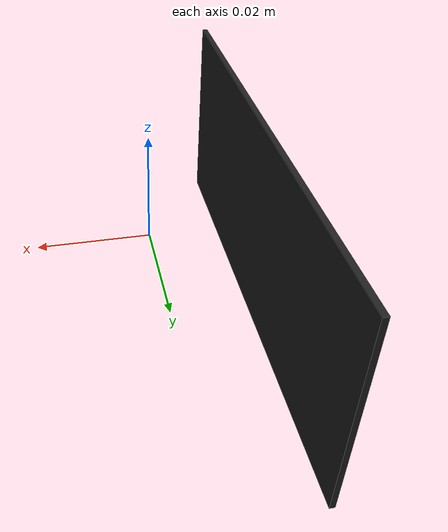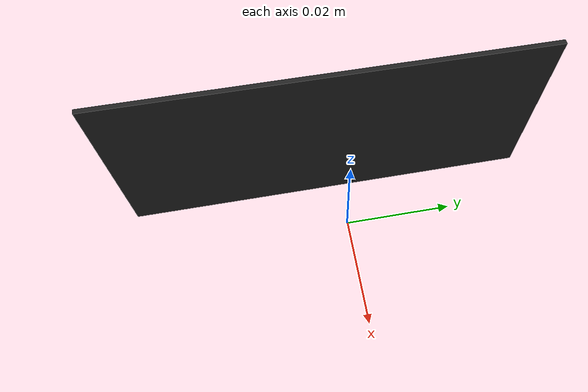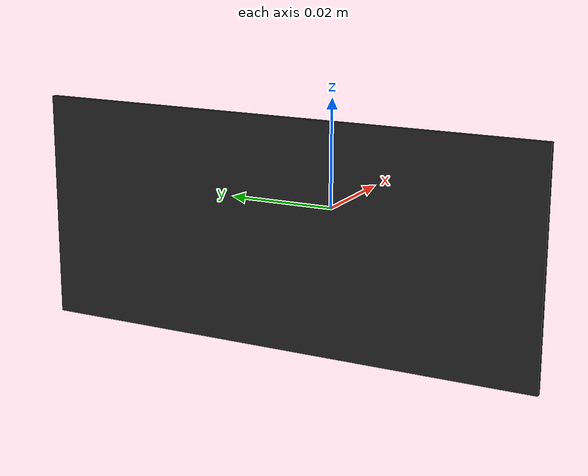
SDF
<sdf version='1.6'>
	<model name="stereo_camera_1">
		<link name="left_camera_link">
			<pose frame=''>0 0.02 0 0 0 0</pose>
			<inertial>
				<mass>0.05</mass>
				<inertia>
					<ixx>1e-05</ixx>
					<ixy>0</ixy>
					<ixz>0</ixz>
					<iyy>1e-05</iyy>
					<iyz>0</iyz>
					<izz>1e-05</izz>
				</inertia>
			</inertial>
			<sensor name='camera' type='wideanglecamera'>
				<always_on>1</always_on>
				<update_rate>10</update_rate>
				<camera name='front'>
					<horizontal_fov>3.05432619</horizontal_fov>
					<image>
						<width>320</width>
						<height>240</height>
						<format>R8G8B8</format>
					</image>
					<clip>
						<near>0.01</near>
						<far>100</far>
					</clip>
					<noise>
						<type>gaussian</type>
						<mean>0</mean>
						<stddev>0.007</stddev>
					</noise>
					<lens>
						<type>orthographic</type>
						<scale_to_hfov>true</scale_to_hfov>
						<cutoff_angle>1.5271631</cutoff_angle>
						<env_texture_size>512</env_texture_size>
					</lens>
				</camera>
				<plugin name='camera_controller' filename='libgazebo_ros_camera.so'>
					<alwaysOn>true</alwaysOn>
					<updateRate>10.0</updateRate>
					<cameraName>stereo_1/left</cameraName>
					<imageTopicName>image_raw</imageTopicName>
					<cameraInfoTopicName>camera_info</cameraInfoTopicName>
					<frameName>stereo_1</frameName>
					<hackBaseline>0.0</hackBaseline>
					<distortionK1>0.0</distortionK1>
					<distortionK2>0.0</distortionK2>
					<distortionK3>0.0</distortionK3>
					<distortionT1>0.0</distortionT1>
					<distortionT2>0.0</distortionT2>
				</plugin>
			</sensor>
			<gravity>0</gravity>
			<kinematic>0</kinematic>
		</link>

		<link name="right_camera_link">
			<pose frame=''>0 -0.02 0 0 0 0</pose>
			<inertial>
				<mass>0.05</mass>
				<inertia>
					<ixx>1e-05</ixx>
					<ixy>0</ixy>
					<ixz>0</ixz>
					<iyy>1e-05</iyy>
					<iyz>0</iyz>
					<izz>1e-05</izz>
				</inertia>
			</inertial>
			<sensor name='camera' type='wideanglecamera'>
				<always_on>1</always_on>
				<update_rate>10</update_rate>
				<camera name='front'>
					<horizontal_fov>3.05432619</horizontal_fov>
					<image>
						<width>320</width>
						<height>240</height>
						<format>R8G8B8</format>
					</image>
					<clip>
						<near>0.01</near>
						<far>100</far>
					</clip>
					<noise>
						<type>gaussian</type>
						<mean>0</mean>
						<stddev>0.007</stddev>
					</noise>
					<lens>
						<type>orthographic</type>
						<scale_to_hfov>true</scale_to_hfov>
						<cutoff_angle>1.5271631</cutoff_angle>
						<env_texture_size>512</env_texture_size>
					</lens>
				</camera>
				<plugin name='camera_controller' filename='libgazebo_ros_camera.so'>
					<alwaysOn>true</alwaysOn>
					<updateRate>10.0</updateRate>
					<cameraName>stereo_1/right</cameraName>
					<imageTopicName>image_raw</imageTopicName>
					<cameraInfoTopicName>camera_info</cameraInfoTopicName>
					<frameName>stereo_1</frameName>
					<hackBaseline>-0.4</hackBaseline>
					<distortionK1>0.0</distortionK1>
					<distortionK2>0.0</distortionK2>
					<distortionK3>0.0</distortionK3>
					<distortionT1>0.0</distortionT1>
					<distortionT2>0.0</distortionT2>
				</plugin>
			</sensor>
			<gravity>0</gravity>
			<kinematic>0</kinematic>
		</link>

		<link name="base_link">
			<pose frame=''>-0.02 0 0 0 0 0</pose>
			<inertial>
				<mass>0.01</mass>
				<inertia>
					<ixx>1e-05</ixx>
					<ixy>0</ixy>
					<ixz>0</ixz>
					<iyy>1e-05</iyy>
					<iyz>0</iyz>
					<izz>1e-05</izz>
				</inertia>
			</inertial>
			<visual name="visual">
				<geometry>
					<box>
						<size>0.001 0.09 0.04</size>
					</box>
				</geometry>
				<material>
					<script>
						<name>Gazebo/Black</name>
						<uri>file://media/materials/scripts/gazebo.material</uri>
					</script>
				</material>
			</visual>
		</link>

		<joint name='left_camera_joint' type='fixed'>
			<child>left_camera_link</child>
			<parent>base_link</parent>
		</joint>

		<joint name='right_camera_joint' type='fixed'>
			<child>right_camera_link</child>
			<parent>base_link</parent>
		</joint>
	</model>
</sdf>
